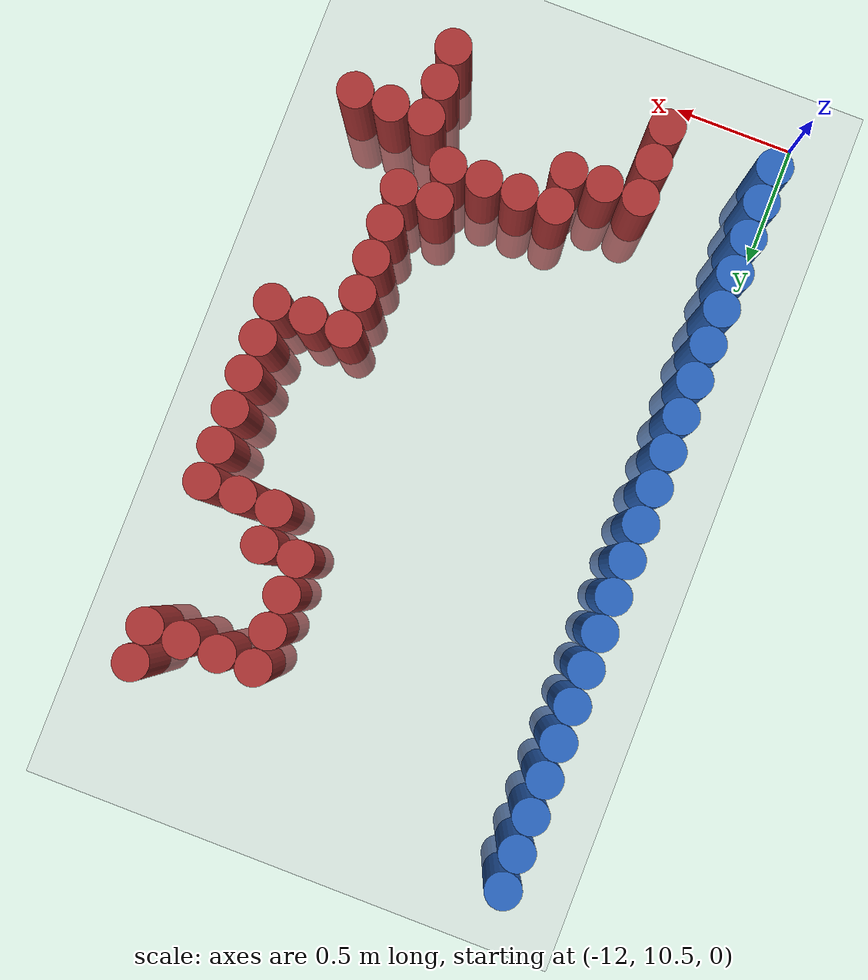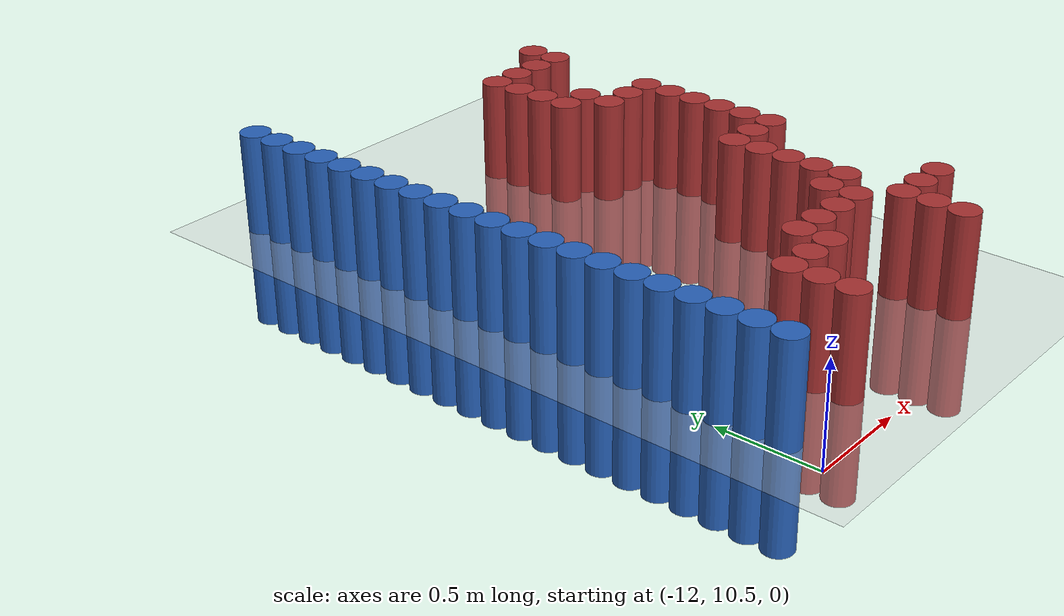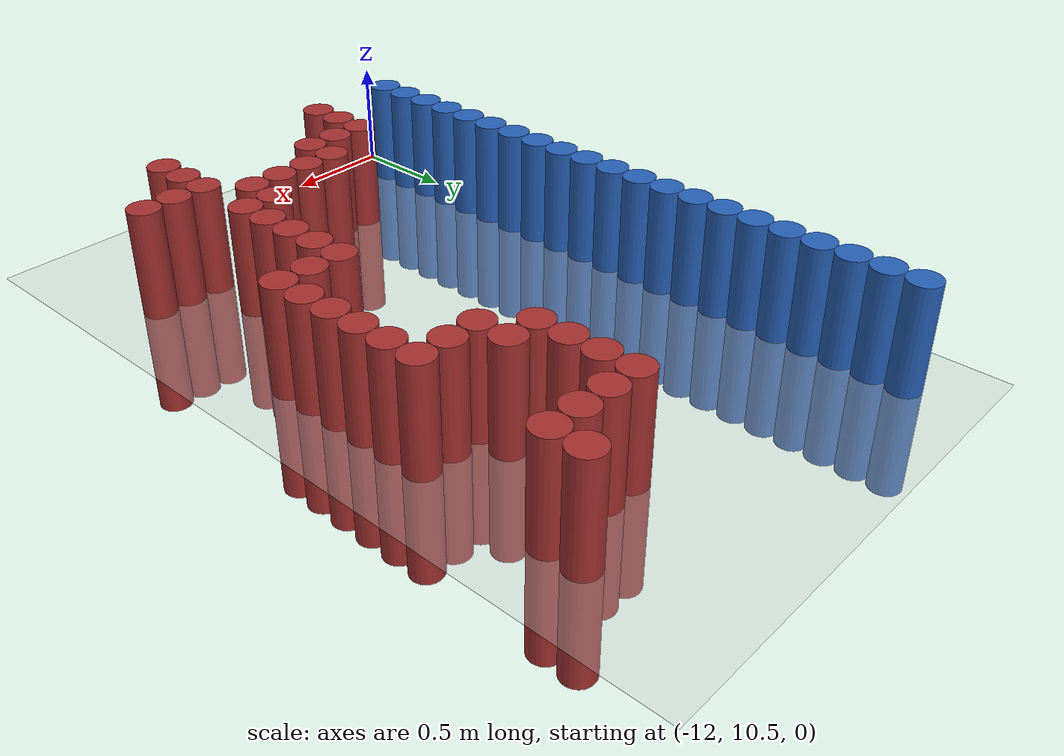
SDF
<sdf version="1.6">
 <world name="default">
  <model name="ground_plane">
   <static>1</static>
   <link name="link">
    <collision name="collision">
     <geometry><plane><normal>0 0 1</normal><size>100 100</size></plane></geometry>
     <surface><friction><ode><mu>100</mu><mu2>50</mu2></ode></friction></surface>
    </collision>
    <visual name="visual">
     <cast_shadows>0</cast_shadows>
     <geometry><plane><normal>0 0 1</normal><size>100 100</size></plane></geometry>
     <material>
      <script><uri>file://media/materials/scripts/gazebo.material</uri><name>Gazebo/Grey</name></script>
     </material>
    </visual>
   </link>
  </model>
  <model name="unit_cylinder_182">
   <static>1</static>
   <pose>-11.925 10.725 0 0 -0 0</pose>
   <link name="link">
    <inertial>
     <mass>1</mass>
     <inertia><ixx>0.145833</ixx><ixy>0</ixy><ixz>0</ixz><iyy>0.145833</iyy><iyz>0</iyz><izz>0.125</izz></inertia>
    </inertial>
    <collision name="collision">
     <geometry><cylinder><radius>0.075</radius><length>1</length></cylinder></geometry>
    </collision>
    <visual name="visual">
     <geometry><cylinder><radius>0.075</radius><length>1</length></cylinder></geometry>
     <material><ambient>0.152 0.379 0.72 1</ambient><diffuse>0.152 0.379 0.72 1</diffuse></material>
     <material>
      <script><name>Gazebo/Grey</name><uri>file://media/materials/scripts/gazebo.material</uri></script>
     </material>
    </visual>
   </link>
  </model>
  <model name="unit_cylinder_183">
   <static>1</static>
   <pose>-11.925 10.875 0 0 -0 0</pose>
   <link name="link">
    <inertial>
     <mass>1</mass>
     <inertia><ixx>0.145833</ixx><ixy>0</ixy><ixz>0</ixz><iyy>0.145833</iyy><iyz>0</iyz><izz>0.125</izz></inertia>
    </inertial>
    <collision name="collision">
     <geometry><cylinder><radius>0.075</radius><length>1</length></cylinder></geometry>
    </collision>
    <visual name="visual">
     <geometry><cylinder><radius>0.075</radius><length>1</length></cylinder></geometry>
     <material><ambient>0.152 0.379 0.72 1</ambient><diffuse>0.152 0.379 0.72 1</diffuse></material>
     <material>
      <script><name>Gazebo/Grey</name><uri>file://media/materials/scripts/gazebo.material</uri></script>
     </material>
    </visual>
   </link>
  </model>
  <model name="unit_cylinder_184">
   <static>1</static>
   <pose>-11.925 11.025 0 0 -0 0</pose>
   <link name="link">
    <inertial>
     <mass>1</mass>
     <inertia><ixx>0.145833</ixx><ixy>0</ixy><ixz>0</ixz><iyy>0.145833</iyy><iyz>0</iyz><izz>0.125</izz></inertia>
    </inertial>
    <collision name="collision">
     <geometry><cylinder><radius>0.075</radius><length>1</length></cylinder></geometry>
    </collision>
    <visual name="visual">
     <geometry><cylinder><radius>0.075</radius><length>1</length></cylinder></geometry>
     <material><ambient>0.152 0.379 0.72 1</ambient><diffuse>0.152 0.379 0.72 1</diffuse></material>
     <material>
      <script><name>Gazebo/Grey</name><uri>file://media/materials/scripts/gazebo.material</uri></script>
     </material>
    </visual>
   </link>
  </model>
  <model name="unit_cylinder_185">
   <static>1</static>
   <pose>-11.925 11.175 0 0 -0 0</pose>
   <link name="link">
    <inertial>
     <mass>1</mass>
     <inertia><ixx>0.145833</ixx><ixy>0</ixy><ixz>0</ixz><iyy>0.145833</iyy><iyz>0</iyz><izz>0.125</izz></inertia>
    </inertial>
    <collision name="collision">
     <geometry><cylinder><radius>0.075</radius><length>1</length></cylinder></geometry>
    </collision>
    <visual name="visual">
     <geometry><cylinder><radius>0.075</radius><length>1</length></cylinder></geometry>
     <material><ambient>0.152 0.379 0.72 1</ambient><diffuse>0.152 0.379 0.72 1</diffuse></material>
     <material>
      <script><name>Gazebo/Grey</name><uri>file://media/materials/scripts/gazebo.material</uri></script>
     </material>
    </visual>
   </link>
  </model>
  <model name="unit_cylinder_186">
   <static>1</static>
   <pose>-11.925 11.325 0 0 -0 0</pose>
   <link name="link">
    <inertial>
     <mass>1</mass>
     <inertia><ixx>0.145833</ixx><ixy>0</ixy><ixz>0</ixz><iyy>0.145833</iyy><iyz>0</iyz><izz>0.125</izz></inertia>
    </inertial>
    <collision name="collision">
     <geometry><cylinder><radius>0.075</radius><length>1</length></cylinder></geometry>
    </collision>
    <visual name="visual">
     <geometry><cylinder><radius>0.075</radius><length>1</length></cylinder></geometry>
     <material><ambient>0.152 0.379 0.72 1</ambient><diffuse>0.152 0.379 0.72 1</diffuse></material>
     <material>
      <script><name>Gazebo/Grey</name><uri>file://media/materials/scripts/gazebo.material</uri></script>
     </material>
    </visual>
   </link>
  </model>
  <model name="unit_cylinder_187">
   <static>1</static>
   <pose>-11.925 11.475 0 0 -0 0</pose>
   <link name="link">
    <inertial>
     <mass>1</mass>
     <inertia><ixx>0.145833</ixx><ixy>0</ixy><ixz>0</ixz><iyy>0.145833</iyy><iyz>0</iyz><izz>0.125</izz></inertia>
    </inertial>
    <collision name="collision">
     <geometry><cylinder><radius>0.075</radius><length>1</length></cylinder></geometry>
    </collision>
    <visual name="visual">
     <geometry><cylinder><radius>0.075</radius><length>1</length></cylinder></geometry>
     <material><ambient>0.152 0.379 0.72 1</ambient><diffuse>0.152 0.379 0.72 1</diffuse></material>
     <material>
      <script><name>Gazebo/Grey</name><uri>file://media/materials/scripts/gazebo.material</uri></script>
     </material>
    </visual>
   </link>
  </model>
  <model name="unit_cylinder_188">
   <static>1</static>
   <pose>-11.925 11.625 0 0 -0 0</pose>
   <link name="link">
    <inertial>
     <mass>1</mass>
     <inertia><ixx>0.145833</ixx><ixy>0</ixy><ixz>0</ixz><iyy>0.145833</iyy><iyz>0</iyz><izz>0.125</izz></inertia>
    </inertial>
    <collision name="collision">
     <geometry><cylinder><radius>0.075</radius><length>1</length></cylinder></geometry>
    </collision>
    <visual name="visual">
     <geometry><cylinder><radius>0.075</radius><length>1</length></cylinder></geometry>
     <material><ambient>0.152 0.379 0.72 1</ambient><diffuse>0.152 0.379 0.72 1</diffuse></material>
     <material>
      <script><name>Gazebo/Grey</name><uri>file://media/materials/scripts/gazebo.material</uri></script>
     </material>
    </visual>
   </link>
  </model>
  <model name="unit_cylinder_189">
   <static>1</static>
   <pose>-11.925 11.775 0 0 -0 0</pose>
   <link name="link">
    <inertial>
     <mass>1</mass>
     <inertia><ixx>0.145833</ixx><ixy>0</ixy><ixz>0</ixz><iyy>0.145833</iyy><iyz>0</iyz><izz>0.125</izz></inertia>
    </inertial>
    <collision name="collision">
     <geometry><cylinder><radius>0.075</radius><length>1</length></cylinder></geometry>
    </collision>
    <visual name="visual">
     <geometry><cylinder><radius>0.075</radius><length>1</length></cylinder></geometry>
     <material><ambient>0.152 0.379 0.72 1</ambient><diffuse>0.152 0.379 0.72 1</diffuse></material>
     <material>
      <script><name>Gazebo/Grey</name><uri>file://media/materials/scripts/gazebo.material</uri></script>
     </material>
    </visual>
   </link>
  </model>
  <model name="unit_cylinder_190">
   <static>1</static>
   <pose>-11.925 11.925 0 0 -0 0</pose>
   <link name="link">
    <inertial>
     <mass>1</mass>
     <inertia><ixx>0.145833</ixx><ixy>0</ixy><ixz>0</ixz><iyy>0.145833</iyy><iyz>0</iyz><izz>0.125</izz></inertia>
    </inertial>
    <collision name="collision">
     <geometry><cylinder><radius>0.075</radius><length>1</length></cylinder></geometry>
    </collision>
    <visual name="visual">
     <geometry><cylinder><radius>0.075</radius><length>1</length></cylinder></geometry>
     <material><ambient>0.152 0.379 0.72 1</ambient><diffuse>0.152 0.379 0.72 1</diffuse></material>
     <material>
      <script><name>Gazebo/Grey</name><uri>file://media/materials/scripts/gazebo.material</uri></script>
     </material>
    </visual>
   </link>
  </model>
  <model name="unit_cylinder_191">
   <static>1</static>
   <pose>-11.925 12.075 0 0 -0 0</pose>
   <link name="link">
    <inertial>
     <mass>1</mass>
     <inertia><ixx>0.145833</ixx><ixy>0</ixy><ixz>0</ixz><iyy>0.145833</iyy><iyz>0</iyz><izz>0.125</izz></inertia>
    </inertial>
    <collision name="collision">
     <geometry><cylinder><radius>0.075</radius><length>1</length></cylinder></geometry>
    </collision>
    <visual name="visual">
     <geometry><cylinder><radius>0.075</radius><length>1</length></cylinder></geometry>
     <material><ambient>0.152 0.379 0.72 1</ambient><diffuse>0.152 0.379 0.72 1</diffuse></material>
     <material>
      <script><name>Gazebo/Grey</name><uri>file://media/materials/scripts/gazebo.material</uri></script>
     </material>
    </visual>
   </link>
  </model>
  <model name="unit_cylinder_192">
   <static>1</static>
   <pose>-11.925 12.225 0 0 -0 0</pose>
   <link name="link">
    <inertial>
     <mass>1</mass>
     <inertia><ixx>0.145833</ixx><ixy>0</ixy><ixz>0</ixz><iyy>0.145833</iyy><iyz>0</iyz><izz>0.125</izz></inertia>
    </inertial>
    <collision name="collision">
     <geometry><cylinder><radius>0.075</radius><length>1</length></cylinder></geometry>
    </collision>
    <visual name="visual">
     <geometry><cylinder><radius>0.075</radius><length>1</length></cylinder></geometry>
     <material><ambient>0.152 0.379 0.72 1</ambient><diffuse>0.152 0.379 0.72 1</diffuse></material>
     <material>
      <script><name>Gazebo/Grey</name><uri>file://media/materials/scripts/gazebo.material</uri></script>
     </material>
    </visual>
   </link>
  </model>
  <model name="unit_cylinder_193">
   <static>1</static>
   <pose>-11.925 12.375 0 0 -0 0</pose>
   <link name="link">
    <inertial>
     <mass>1</mass>
     <inertia><ixx>0.145833</ixx><ixy>0</ixy><ixz>0</ixz><iyy>0.145833</iyy><iyz>0</iyz><izz>0.125</izz></inertia>
    </inertial>
    <collision name="collision">
     <geometry><cylinder><radius>0.075</radius><length>1</length></cylinder></geometry>
    </collision>
    <visual name="visual">
     <geometry><cylinder><radius>0.075</radius><length>1</length></cylinder></geometry>
     <material><ambient>0.152 0.379 0.72 1</ambient><diffuse>0.152 0.379 0.72 1</diffuse></material>
     <material>
      <script><name>Gazebo/Grey</name><uri>file://media/materials/scripts/gazebo.material</uri></script>
     </material>
    </visual>
   </link>
  </model>
  <model name="unit_cylinder_194">
   <static>1</static>
   <pose>-11.925 12.525 0 0 -0 0</pose>
   <link name="link">
    <inertial>
     <mass>1</mass>
     <inertia><ixx>0.145833</ixx><ixy>0</ixy><ixz>0</ixz><iyy>0.145833</iyy><iyz>0</iyz><izz>0.125</izz></inertia>
    </inertial>
    <collision name="collision">
     <geometry><cylinder><radius>0.075</radius><length>1</length></cylinder></geometry>
    </collision>
    <visual name="visual">
     <geometry><cylinder><radius>0.075</radius><length>1</length></cylinder></geometry>
     <material><ambient>0.152 0.379 0.72 1</ambient><diffuse>0.152 0.379 0.72 1</diffuse></material>
     <material>
      <script><name>Gazebo/Grey</name><uri>file://media/materials/scripts/gazebo.material</uri></script>
     </material>
    </visual>
   </link>
  </model>
  <model name="unit_cylinder_195">
   <static>1</static>
   <pose>-11.925 12.675 0 0 -0 0</pose>
   <link name="link">
    <inertial>
     <mass>1</mass>
     <inertia><ixx>0.145833</ixx><ixy>0</ixy><ixz>0</ixz><iyy>0.145833</iyy><iyz>0</iyz><izz>0.125</izz></inertia>
    </inertial>
    <collision name="collision">
     <geometry><cylinder><radius>0.075</radius><length>1</length></cylinder></geometry>
    </collision>
    <visual name="visual">
     <geometry><cylinder><radius>0.075</radius><length>1</length></cylinder></geometry>
     <material><ambient>0.152 0.379 0.72 1</ambient><diffuse>0.152 0.379 0.72 1</diffuse></material>
     <material>
      <script><name>Gazebo/Grey</name><uri>file://media/materials/scripts/gazebo.material</uri></script>
     </material>
    </visual>
   </link>
  </model>
  <model name="unit_cylinder_196">
   <static>1</static>
   <pose>-11.925 12.825 0 0 -0 0</pose>
   <link name="link">
    <inertial>
     <mass>1</mass>
     <inertia><ixx>0.145833</ixx><ixy>0</ixy><ixz>0</ixz><iyy>0.145833</iyy><iyz>0</iyz><izz>0.125</izz></inertia>
    </inertial>
    <collision name="collision">
     <geometry><cylinder><radius>0.075</radius><length>1</length></cylinder></geometry>
    </collision>
    <visual name="visual">
     <geometry><cylinder><radius>0.075</radius><length>1</length></cylinder></geometry>
     <material><ambient>0.152 0.379 0.72 1</ambient><diffuse>0.152 0.379 0.72 1</diffuse></material>
     <material>
      <script><name>Gazebo/Grey</name><uri>file://media/materials/scripts/gazebo.material</uri></script>
     </material>
    </visual>
   </link>
  </model>
  <model name="unit_cylinder_197">
   <static>1</static>
   <pose>-11.925 12.975 0 0 -0 0</pose>
   <link name="link">
    <inertial>
     <mass>1</mass>
     <inertia><ixx>0.145833</ixx><ixy>0</ixy><ixz>0</ixz><iyy>0.145833</iyy><iyz>0</iyz><izz>0.125</izz></inertia>
    </inertial>
    <collision name="collision">
     <geometry><cylinder><radius>0.075</radius><length>1</length></cylinder></geometry>
    </collision>
    <visual name="visual">
     <geometry><cylinder><radius>0.075</radius><length>1</length></cylinder></geometry>
     <material><ambient>0.152 0.379 0.72 1</ambient><diffuse>0.152 0.379 0.72 1</diffuse></material>
     <material>
      <script><name>Gazebo/Grey</name><uri>file://media/materials/scripts/gazebo.material</uri></script>
     </material>
    </visual>
   </link>
  </model>
  <model name="unit_cylinder_198">
   <static>1</static>
   <pose>-11.925 13.125 0 0 -0 0</pose>
   <link name="link">
    <inertial>
     <mass>1</mass>
     <inertia><ixx>0.145833</ixx><ixy>0</ixy><ixz>0</ixz><iyy>0.145833</iyy><iyz>0</iyz><izz>0.125</izz></inertia>
    </inertial>
    <collision name="collision">
     <geometry><cylinder><radius>0.075</radius><length>1</length></cylinder></geometry>
    </collision>
    <visual name="visual">
     <geometry><cylinder><radius>0.075</radius><length>1</length></cylinder></geometry>
     <material><ambient>0.152 0.379 0.72 1</ambient><diffuse>0.152 0.379 0.72 1</diffuse></material>
     <material>
      <script><name>Gazebo/Grey</name><uri>file://media/materials/scripts/gazebo.material</uri></script>
     </material>
    </visual>
   </link>
  </model>
  <model name="unit_cylinder_199">
   <static>1</static>
   <pose>-11.925 13.275 0 0 -0 0</pose>
   <link name="link">
    <inertial>
     <mass>1</mass>
     <inertia><ixx>0.145833</ixx><ixy>0</ixy><ixz>0</ixz><iyy>0.145833</iyy><iyz>0</iyz><izz>0.125</izz></inertia>
    </inertial>
    <collision name="collision">
     <geometry><cylinder><radius>0.075</radius><length>1</length></cylinder></geometry>
    </collision>
    <visual name="visual">
     <geometry><cylinder><radius>0.075</radius><length>1</length></cylinder></geometry>
     <material><ambient>0.152 0.379 0.72 1</ambient><diffuse>0.152 0.379 0.72 1</diffuse></material>
     <material>
      <script><name>Gazebo/Grey</name><uri>file://media/materials/scripts/gazebo.material</uri></script>
     </material>
    </visual>
   </link>
  </model>
  <model name="unit_cylinder_200">
   <static>1</static>
   <pose>-11.925 13.425 0 0 -0 0</pose>
   <link name="link">
    <inertial>
     <mass>1</mass>
     <inertia><ixx>0.145833</ixx><ixy>0</ixy><ixz>0</ixz><iyy>0.145833</iyy><iyz>0</iyz><izz>0.125</izz></inertia>
    </inertial>
    <collision name="collision">
     <geometry><cylinder><radius>0.075</radius><length>1</length></cylinder></geometry>
    </collision>
    <visual name="visual">
     <geometry><cylinder><radius>0.075</radius><length>1</length></cylinder></geometry>
     <material><ambient>0.152 0.379 0.72 1</ambient><diffuse>0.152 0.379 0.72 1</diffuse></material>
     <material>
      <script><name>Gazebo/Grey</name><uri>file://media/materials/scripts/gazebo.material</uri></script>
     </material>
    </visual>
   </link>
  </model>
  <model name="unit_cylinder_201">
   <static>1</static>
   <pose>-11.925 13.575 0 0 -0 0</pose>
   <link name="link">
    <inertial>
     <mass>1</mass>
     <inertia><ixx>0.145833</ixx><ixy>0</ixy><ixz>0</ixz><iyy>0.145833</iyy><iyz>0</iyz><izz>0.125</izz></inertia>
    </inertial>
    <collision name="collision">
     <geometry><cylinder><radius>0.075</radius><length>1</length></cylinder></geometry>
    </collision>
    <visual name="visual">
     <geometry><cylinder><radius>0.075</radius><length>1</length></cylinder></geometry>
     <material><ambient>0.152 0.379 0.72 1</ambient><diffuse>0.152 0.379 0.72 1</diffuse></material>
     <material>
      <script><name>Gazebo/Grey</name><uri>file://media/materials/scripts/gazebo.material</uri></script>
     </material>
    </visual>
   </link>
  </model>
  <model name="unit_cylinder_202">
   <static>1</static>
   <pose>-11.925 13.725 0 0 -0 0</pose>
   <link name="link">
    <inertial>
     <mass>1</mass>
     <inertia><ixx>0.145833</ixx><ixy>0</ixy><ixz>0</ixz><iyy>0.145833</iyy><iyz>0</iyz><izz>0.125</izz></inertia>
    </inertial>
    <collision name="collision">
     <geometry><cylinder><radius>0.075</radius><length>1</length></cylinder></geometry>
    </collision>
    <visual name="visual">
     <geometry><cylinder><radius>0.075</radius><length>1</length></cylinder></geometry>
     <material><ambient>0.152 0.379 0.72 1</ambient><diffuse>0.152 0.379 0.72 1</diffuse></material>
     <material>
      <script><name>Gazebo/Grey</name><uri>file://media/materials/scripts/gazebo.material</uri></script>
     </material>
    </visual>
   </link>
  </model>
  <model name="unit_cylinder_266">
   <static>1</static>
   <pose>-11.475 10.725 0 0 -0 0</pose>
   <link name="link">
    <inertial>
     <mass>1</mass>
     <inertia><ixx>0.145833</ixx><ixy>0</ixy><ixz>0</ixz><iyy>0.145833</iyy><iyz>0</iyz><izz>0.125</izz></inertia>
    </inertial>
    <collision name="collision">
     <geometry><cylinder><radius>0.075</radius><length>1</length></cylinder></geometry>
    </collision>
    <visual name="visual">
     <geometry><cylinder><radius>0.075</radius><length>1</length></cylinder></geometry>
     <material><ambient>0.648 0.192 0.192 1</ambient><diffuse>0.648 0.192 0.192 1</diffuse></material>
     <material>
      <script><name>Gazebo/Grey</name><uri>file://media/materials/scripts/gazebo.material</uri></script>
     </material>
    </visual>
   </link>
  </model>
  <model name="unit_cylinder_267">
   <static>1</static>
   <pose>-11.475 10.875 0 0 -0 0</pose>
   <link name="link">
    <inertial>
     <mass>1</mass>
     <inertia><ixx>0.145833</ixx><ixy>0</ixy><ixz>0</ixz><iyy>0.145833</iyy><iyz>0</iyz><izz>0.125</izz></inertia>
    </inertial>
    <collision name="collision">
     <geometry><cylinder><radius>0.075</radius><length>1</length></cylinder></geometry>
    </collision>
    <visual name="visual">
     <geometry><cylinder><radius>0.075</radius><length>1</length></cylinder></geometry>
     <material><ambient>0.648 0.192 0.192 1</ambient><diffuse>0.648 0.192 0.192 1</diffuse></material>
     <material>
      <script><name>Gazebo/Grey</name><uri>file://media/materials/scripts/gazebo.material</uri></script>
     </material>
    </visual>
   </link>
  </model>
  <model name="unit_cylinder_268">
   <static>1</static>
   <pose>-11.475 11.025 0 0 -0 0</pose>
   <link name="link">
    <inertial>
     <mass>1</mass>
     <inertia><ixx>0.145833</ixx><ixy>0</ixy><ixz>0</ixz><iyy>0.145833</iyy><iyz>0</iyz><izz>0.125</izz></inertia>
    </inertial>
    <collision name="collision">
     <geometry><cylinder><radius>0.075</radius><length>1</length></cylinder></geometry>
    </collision>
    <visual name="visual">
     <geometry><cylinder><radius>0.075</radius><length>1</length></cylinder></geometry>
     <material><ambient>0.648 0.192 0.192 1</ambient><diffuse>0.648 0.192 0.192 1</diffuse></material>
     <material>
      <script><name>Gazebo/Grey</name><uri>file://media/materials/scripts/gazebo.material</uri></script>
     </material>
    </visual>
   </link>
  </model>
  <model name="unit_cylinder_284">
   <static>1</static>
   <pose>-11.325 11.025 0 0 -0 0</pose>
   <link name="link">
    <inertial>
     <mass>1</mass>
     <inertia><ixx>0.145833</ixx><ixy>0</ixy><ixz>0</ixz><iyy>0.145833</iyy><iyz>0</iyz><izz>0.125</izz></inertia>
    </inertial>
    <collision name="collision">
     <geometry><cylinder><radius>0.075</radius><length>1</length></cylinder></geometry>
    </collision>
    <visual name="visual">
     <geometry><cylinder><radius>0.075</radius><length>1</length></cylinder></geometry>
     <material><ambient>0.648 0.192 0.192 1</ambient><diffuse>0.648 0.192 0.192 1</diffuse></material>
     <material>
      <script><name>Gazebo/Grey</name><uri>file://media/materials/scripts/gazebo.material</uri></script>
     </material>
    </visual>
   </link>
  </model>
  <model name="unit_cylinder_300">
   <static>1</static>
   <pose>-11.175 11.025 0 0 -0 0</pose>
   <link name="link">
    <inertial>
     <mass>1</mass>
     <inertia><ixx>0.145833</ixx><ixy>0</ixy><ixz>0</ixz><iyy>0.145833</iyy><iyz>0</iyz><izz>0.125</izz></inertia>
    </inertial>
    <collision name="collision">
     <geometry><cylinder><radius>0.075</radius><length>1</length></cylinder></geometry>
    </collision>
    <visual name="visual">
     <geometry><cylinder><radius>0.075</radius><length>1</length></cylinder></geometry>
     <material><ambient>0.648 0.192 0.192 1</ambient><diffuse>0.648 0.192 0.192 1</diffuse></material>
     <material>
      <script><name>Gazebo/Grey</name><uri>file://media/materials/scripts/gazebo.material</uri></script>
     </material>
    </visual>
   </link>
  </model>
  <model name="unit_cylinder_301">
   <static>1</static>
   <pose>-11.175 11.175 0 0 -0 0</pose>
   <link name="link">
    <inertial>
     <mass>1</mass>
     <inertia><ixx>0.145833</ixx><ixy>0</ixy><ixz>0</ixz><iyy>0.145833</iyy><iyz>0</iyz><izz>0.125</izz></inertia>
    </inertial>
    <collision name="collision">
     <geometry><cylinder><radius>0.075</radius><length>1</length></cylinder></geometry>
    </collision>
    <visual name="visual">
     <geometry><cylinder><radius>0.075</radius><length>1</length></cylinder></geometry>
     <material><ambient>0.648 0.192 0.192 1</ambient><diffuse>0.648 0.192 0.192 1</diffuse></material>
     <material>
      <script><name>Gazebo/Grey</name><uri>file://media/materials/scripts/gazebo.material</uri></script>
     </material>
    </visual>
   </link>
  </model>
  <model name="unit_cylinder_307">
   <static>1</static>
   <pose>-11.025 11.175 0 0 -0 0</pose>
   <link name="link">
    <inertial>
     <mass>1</mass>
     <inertia><ixx>0.145833</ixx><ixy>0</ixy><ixz>0</ixz><iyy>0.145833</iyy><iyz>0</iyz><izz>0.125</izz></inertia>
    </inertial>
    <collision name="collision">
     <geometry><cylinder><radius>0.075</radius><length>1</length></cylinder></geometry>
    </collision>
    <visual name="visual">
     <geometry><cylinder><radius>0.075</radius><length>1</length></cylinder></geometry>
     <material><ambient>0.648 0.192 0.192 1</ambient><diffuse>0.648 0.192 0.192 1</diffuse></material>
     <material>
      <script><name>Gazebo/Grey</name><uri>file://media/materials/scripts/gazebo.material</uri></script>
     </material>
    </visual>
   </link>
  </model>
  <model name="unit_cylinder_317">
   <static>1</static>
   <pose>-10.875 11.175 0 0 -0 0</pose>
   <link name="link">
    <inertial>
     <mass>1</mass>
     <inertia><ixx>0.145833</ixx><ixy>0</ixy><ixz>0</ixz><iyy>0.145833</iyy><iyz>0</iyz><izz>0.125</izz></inertia>
    </inertial>
    <collision name="collision">
     <geometry><cylinder><radius>0.075</radius><length>1</length></cylinder></geometry>
    </collision>
    <visual name="visual">
     <geometry><cylinder><radius>0.075</radius><length>1</length></cylinder></geometry>
     <material><ambient>0.648 0.192 0.192 1</ambient><diffuse>0.648 0.192 0.192 1</diffuse></material>
     <material>
      <script><name>Gazebo/Grey</name><uri>file://media/materials/scripts/gazebo.material</uri></script>
     </material>
    </visual>
   </link>
  </model>
  <model name="unit_cylinder_328">
   <static>1</static>
   <pose>-10.725 11.175 0 0 -0 0</pose>
   <link name="link">
    <inertial>
     <mass>1</mass>
     <inertia><ixx>0.145833</ixx><ixy>0</ixy><ixz>0</ixz><iyy>0.145833</iyy><iyz>0</iyz><izz>0.125</izz></inertia>
    </inertial>
    <collision name="collision">
     <geometry><cylinder><radius>0.075</radius><length>1</length></cylinder></geometry>
    </collision>
    <visual name="visual">
     <geometry><cylinder><radius>0.075</radius><length>1</length></cylinder></geometry>
     <material><ambient>0.648 0.192 0.192 1</ambient><diffuse>0.648 0.192 0.192 1</diffuse></material>
     <material>
      <script><name>Gazebo/Grey</name><uri>file://media/materials/scripts/gazebo.material</uri></script>
     </material>
    </visual>
   </link>
  </model>
  <model name="unit_cylinder_329">
   <static>1</static>
   <pose>-10.725 11.325 0 0 -0 0</pose>
   <link name="link">
    <inertial>
     <mass>1</mass>
     <inertia><ixx>0.145833</ixx><ixy>0</ixy><ixz>0</ixz><iyy>0.145833</iyy><iyz>0</iyz><izz>0.125</izz></inertia>
    </inertial>
    <collision name="collision">
     <geometry><cylinder><radius>0.075</radius><length>1</length></cylinder></geometry>
    </collision>
    <visual name="visual">
     <geometry><cylinder><radius>0.075</radius><length>1</length></cylinder></geometry>
     <material><ambient>0.648 0.192 0.192 1</ambient><diffuse>0.648 0.192 0.192 1</diffuse></material>
     <material>
      <script><name>Gazebo/Grey</name><uri>file://media/materials/scripts/gazebo.material</uri></script>
     </material>
    </visual>
   </link>
  </model>
  <model name="unit_cylinder_330">
   <static>1</static>
   <pose>-10.725 12.825 0 0 -0 0</pose>
   <link name="link">
    <inertial>
     <mass>1</mass>
     <inertia><ixx>0.145833</ixx><ixy>0</ixy><ixz>0</ixz><iyy>0.145833</iyy><iyz>0</iyz><izz>0.125</izz></inertia>
    </inertial>
    <collision name="collision">
     <geometry><cylinder><radius>0.075</radius><length>1</length></cylinder></geometry>
    </collision>
    <visual name="visual">
     <geometry><cylinder><radius>0.075</radius><length>1</length></cylinder></geometry>
     <material><ambient>0.648 0.192 0.192 1</ambient><diffuse>0.648 0.192 0.192 1</diffuse></material>
     <material>
      <script><name>Gazebo/Grey</name><uri>file://media/materials/scripts/gazebo.material</uri></script>
     </material>
    </visual>
   </link>
  </model>
  <model name="unit_cylinder_331">
   <static>1</static>
   <pose>-10.725 12.975 0 0 -0 0</pose>
   <link name="link">
    <inertial>
     <mass>1</mass>
     <inertia><ixx>0.145833</ixx><ixy>0</ixy><ixz>0</ixz><iyy>0.145833</iyy><iyz>0</iyz><izz>0.125</izz></inertia>
    </inertial>
    <collision name="collision">
     <geometry><cylinder><radius>0.075</radius><length>1</length></cylinder></geometry>
    </collision>
    <visual name="visual">
     <geometry><cylinder><radius>0.075</radius><length>1</length></cylinder></geometry>
     <material><ambient>0.648 0.192 0.192 1</ambient><diffuse>0.648 0.192 0.192 1</diffuse></material>
     <material>
      <script><name>Gazebo/Grey</name><uri>file://media/materials/scripts/gazebo.material</uri></script>
     </material>
    </visual>
   </link>
  </model>
  <model name="unit_cylinder_332">
   <static>1</static>
   <pose>-10.725 13.125 0 0 -0 0</pose>
   <link name="link">
    <inertial>
     <mass>1</mass>
     <inertia><ixx>0.145833</ixx><ixy>0</ixy><ixz>0</ixz><iyy>0.145833</iyy><iyz>0</iyz><izz>0.125</izz></inertia>
    </inertial>
    <collision name="collision">
     <geometry><cylinder><radius>0.075</radius><length>1</length></cylinder></geometry>
    </collision>
    <visual name="visual">
     <geometry><cylinder><radius>0.075</radius><length>1</length></cylinder></geometry>
     <material><ambient>0.648 0.192 0.192 1</ambient><diffuse>0.648 0.192 0.192 1</diffuse></material>
     <material>
      <script><name>Gazebo/Grey</name><uri>file://media/materials/scripts/gazebo.material</uri></script>
     </material>
    </visual>
   </link>
  </model>
  <model name="unit_cylinder_333">
   <static>1</static>
   <pose>-10.725 13.275 0 0 -0 0</pose>
   <link name="link">
    <inertial>
     <mass>1</mass>
     <inertia><ixx>0.145833</ixx><ixy>0</ixy><ixz>0</ixz><iyy>0.145833</iyy><iyz>0</iyz><izz>0.125</izz></inertia>
    </inertial>
    <collision name="collision">
     <geometry><cylinder><radius>0.075</radius><length>1</length></cylinder></geometry>
    </collision>
    <visual name="visual">
     <geometry><cylinder><radius>0.075</radius><length>1</length></cylinder></geometry>
     <material><ambient>0.648 0.192 0.192 1</ambient><diffuse>0.648 0.192 0.192 1</diffuse></material>
     <material>
      <script><name>Gazebo/Grey</name><uri>file://media/materials/scripts/gazebo.material</uri></script>
     </material>
    </visual>
   </link>
  </model>
  <model name="unit_cylinder_350">
   <static>1</static>
   <pose>-10.575 10.725 0 0 -0 0</pose>
   <link name="link">
    <inertial>
     <mass>1</mass>
     <inertia><ixx>0.145833</ixx><ixy>0</ixy><ixz>0</ixz><iyy>0.145833</iyy><iyz>0</iyz><izz>0.125</izz></inertia>
    </inertial>
    <collision name="collision">
     <geometry><cylinder><radius>0.075</radius><length>1</length></cylinder></geometry>
    </collision>
    <visual name="visual">
     <geometry><cylinder><radius>0.075</radius><length>1</length></cylinder></geometry>
     <material><ambient>0.648 0.192 0.192 1</ambient><diffuse>0.648 0.192 0.192 1</diffuse></material>
     <material>
      <script><name>Gazebo/Grey</name><uri>file://media/materials/scripts/gazebo.material</uri></script>
     </material>
    </visual>
   </link>
  </model>
  <model name="unit_cylinder_351">
   <static>1</static>
   <pose>-10.575 10.875 0 0 -0 0</pose>
   <link name="link">
    <inertial>
     <mass>1</mass>
     <inertia><ixx>0.145833</ixx><ixy>0</ixy><ixz>0</ixz><iyy>0.145833</iyy><iyz>0</iyz><izz>0.125</izz></inertia>
    </inertial>
    <collision name="collision">
     <geometry><cylinder><radius>0.075</radius><length>1</length></cylinder></geometry>
    </collision>
    <visual name="visual">
     <geometry><cylinder><radius>0.075</radius><length>1</length></cylinder></geometry>
     <material><ambient>0.648 0.192 0.192 1</ambient><diffuse>0.648 0.192 0.192 1</diffuse></material>
     <material>
      <script><name>Gazebo/Grey</name><uri>file://media/materials/scripts/gazebo.material</uri></script>
     </material>
    </visual>
   </link>
  </model>
  <model name="unit_cylinder_352">
   <static>1</static>
   <pose>-10.575 11.025 0 0 -0 0</pose>
   <link name="link">
    <inertial>
     <mass>1</mass>
     <inertia><ixx>0.145833</ixx><ixy>0</ixy><ixz>0</ixz><iyy>0.145833</iyy><iyz>0</iyz><izz>0.125</izz></inertia>
    </inertial>
    <collision name="collision">
     <geometry><cylinder><radius>0.075</radius><length>1</length></cylinder></geometry>
    </collision>
    <visual name="visual">
     <geometry><cylinder><radius>0.075</radius><length>1</length></cylinder></geometry>
     <material><ambient>0.648 0.192 0.192 1</ambient><diffuse>0.648 0.192 0.192 1</diffuse></material>
     <material>
      <script><name>Gazebo/Grey</name><uri>file://media/materials/scripts/gazebo.material</uri></script>
     </material>
    </visual>
   </link>
  </model>
  <model name="unit_cylinder_353">
   <static>1</static>
   <pose>-10.575 11.325 0 0 -0 0</pose>
   <link name="link">
    <inertial>
     <mass>1</mass>
     <inertia><ixx>0.145833</ixx><ixy>0</ixy><ixz>0</ixz><iyy>0.145833</iyy><iyz>0</iyz><izz>0.125</izz></inertia>
    </inertial>
    <collision name="collision">
     <geometry><cylinder><radius>0.075</radius><length>1</length></cylinder></geometry>
    </collision>
    <visual name="visual">
     <geometry><cylinder><radius>0.075</radius><length>1</length></cylinder></geometry>
     <material><ambient>0.648 0.192 0.192 1</ambient><diffuse>0.648 0.192 0.192 1</diffuse></material>
     <material>
      <script><name>Gazebo/Grey</name><uri>file://media/materials/scripts/gazebo.material</uri></script>
     </material>
    </visual>
   </link>
  </model>
  <model name="unit_cylinder_354">
   <static>1</static>
   <pose>-10.575 11.475 0 0 -0 0</pose>
   <link name="link">
    <inertial>
     <mass>1</mass>
     <inertia><ixx>0.145833</ixx><ixy>0</ixy><ixz>0</ixz><iyy>0.145833</iyy><iyz>0</iyz><izz>0.125</izz></inertia>
    </inertial>
    <collision name="collision">
     <geometry><cylinder><radius>0.075</radius><length>1</length></cylinder></geometry>
    </collision>
    <visual name="visual">
     <geometry><cylinder><radius>0.075</radius><length>1</length></cylinder></geometry>
     <material><ambient>0.648 0.192 0.192 1</ambient><diffuse>0.648 0.192 0.192 1</diffuse></material>
     <material>
      <script><name>Gazebo/Grey</name><uri>file://media/materials/scripts/gazebo.material</uri></script>
     </material>
    </visual>
   </link>
  </model>
  <model name="unit_cylinder_355">
   <static>1</static>
   <pose>-10.575 11.625 0 0 -0 0</pose>
   <link name="link">
    <inertial>
     <mass>1</mass>
     <inertia><ixx>0.145833</ixx><ixy>0</ixy><ixz>0</ixz><iyy>0.145833</iyy><iyz>0</iyz><izz>0.125</izz></inertia>
    </inertial>
    <collision name="collision">
     <geometry><cylinder><radius>0.075</radius><length>1</length></cylinder></geometry>
    </collision>
    <visual name="visual">
     <geometry><cylinder><radius>0.075</radius><length>1</length></cylinder></geometry>
     <material><ambient>0.648 0.192 0.192 1</ambient><diffuse>0.648 0.192 0.192 1</diffuse></material>
     <material>
      <script><name>Gazebo/Grey</name><uri>file://media/materials/scripts/gazebo.material</uri></script>
     </material>
    </visual>
   </link>
  </model>
  <model name="unit_cylinder_356">
   <static>1</static>
   <pose>-10.575 11.775 0 0 -0 0</pose>
   <link name="link">
    <inertial>
     <mass>1</mass>
     <inertia><ixx>0.145833</ixx><ixy>0</ixy><ixz>0</ixz><iyy>0.145833</iyy><iyz>0</iyz><izz>0.125</izz></inertia>
    </inertial>
    <collision name="collision">
     <geometry><cylinder><radius>0.075</radius><length>1</length></cylinder></geometry>
    </collision>
    <visual name="visual">
     <geometry><cylinder><radius>0.075</radius><length>1</length></cylinder></geometry>
     <material><ambient>0.648 0.192 0.192 1</ambient><diffuse>0.648 0.192 0.192 1</diffuse></material>
     <material>
      <script><name>Gazebo/Grey</name><uri>file://media/materials/scripts/gazebo.material</uri></script>
     </material>
    </visual>
   </link>
  </model>
  <model name="unit_cylinder_357">
   <static>1</static>
   <pose>-10.575 11.925 0 0 -0 0</pose>
   <link name="link">
    <inertial>
     <mass>1</mass>
     <inertia><ixx>0.145833</ixx><ixy>0</ixy><ixz>0</ixz><iyy>0.145833</iyy><iyz>0</iyz><izz>0.125</izz></inertia>
    </inertial>
    <collision name="collision">
     <geometry><cylinder><radius>0.075</radius><length>1</length></cylinder></geometry>
    </collision>
    <visual name="visual">
     <geometry><cylinder><radius>0.075</radius><length>1</length></cylinder></geometry>
     <material><ambient>0.648 0.192 0.192 1</ambient><diffuse>0.648 0.192 0.192 1</diffuse></material>
     <material>
      <script><name>Gazebo/Grey</name><uri>file://media/materials/scripts/gazebo.material</uri></script>
     </material>
    </visual>
   </link>
  </model>
  <model name="unit_cylinder_358">
   <static>1</static>
   <pose>-10.575 12.675 0 0 -0 0</pose>
   <link name="link">
    <inertial>
     <mass>1</mass>
     <inertia><ixx>0.145833</ixx><ixy>0</ixy><ixz>0</ixz><iyy>0.145833</iyy><iyz>0</iyz><izz>0.125</izz></inertia>
    </inertial>
    <collision name="collision">
     <geometry><cylinder><radius>0.075</radius><length>1</length></cylinder></geometry>
    </collision>
    <visual name="visual">
     <geometry><cylinder><radius>0.075</radius><length>1</length></cylinder></geometry>
     <material><ambient>0.648 0.192 0.192 1</ambient><diffuse>0.648 0.192 0.192 1</diffuse></material>
     <material>
      <script><name>Gazebo/Grey</name><uri>file://media/materials/scripts/gazebo.material</uri></script>
     </material>
    </visual>
   </link>
  </model>
  <model name="unit_cylinder_359">
   <static>1</static>
   <pose>-10.575 12.825 0 0 -0 0</pose>
   <link name="link">
    <inertial>
     <mass>1</mass>
     <inertia><ixx>0.145833</ixx><ixy>0</ixy><ixz>0</ixz><iyy>0.145833</iyy><iyz>0</iyz><izz>0.125</izz></inertia>
    </inertial>
    <collision name="collision">
     <geometry><cylinder><radius>0.075</radius><length>1</length></cylinder></geometry>
    </collision>
    <visual name="visual">
     <geometry><cylinder><radius>0.075</radius><length>1</length></cylinder></geometry>
     <material><ambient>0.648 0.192 0.192 1</ambient><diffuse>0.648 0.192 0.192 1</diffuse></material>
     <material>
      <script><name>Gazebo/Grey</name><uri>file://media/materials/scripts/gazebo.material</uri></script>
     </material>
    </visual>
   </link>
  </model>
  <model name="unit_cylinder_360">
   <static>1</static>
   <pose>-10.575 13.275 0 0 -0 0</pose>
   <link name="link">
    <inertial>
     <mass>1</mass>
     <inertia><ixx>0.145833</ixx><ixy>0</ixy><ixz>0</ixz><iyy>0.145833</iyy><iyz>0</iyz><izz>0.125</izz></inertia>
    </inertial>
    <collision name="collision">
     <geometry><cylinder><radius>0.075</radius><length>1</length></cylinder></geometry>
    </collision>
    <visual name="visual">
     <geometry><cylinder><radius>0.075</radius><length>1</length></cylinder></geometry>
     <material><ambient>0.648 0.192 0.192 1</ambient><diffuse>0.648 0.192 0.192 1</diffuse></material>
     <material>
      <script><name>Gazebo/Grey</name><uri>file://media/materials/scripts/gazebo.material</uri></script>
     </material>
    </visual>
   </link>
  </model>
  <model name="unit_cylinder_372">
   <static>1</static>
   <pose>-10.425 11.025 0 0 -0 0</pose>
   <link name="link">
    <inertial>
     <mass>1</mass>
     <inertia><ixx>0.145833</ixx><ixy>0</ixy><ixz>0</ixz><iyy>0.145833</iyy><iyz>0</iyz><izz>0.125</izz></inertia>
    </inertial>
    <collision name="collision">
     <geometry><cylinder><radius>0.075</radius><length>1</length></cylinder></geometry>
    </collision>
    <visual name="visual">
     <geometry><cylinder><radius>0.075</radius><length>1</length></cylinder></geometry>
     <material><ambient>0.648 0.192 0.192 1</ambient><diffuse>0.648 0.192 0.192 1</diffuse></material>
     <material>
      <script><name>Gazebo/Grey</name><uri>file://media/materials/scripts/gazebo.material</uri></script>
     </material>
    </visual>
   </link>
  </model>
  <model name="unit_cylinder_373">
   <static>1</static>
   <pose>-10.425 11.925 0 0 -0 0</pose>
   <link name="link">
    <inertial>
     <mass>1</mass>
     <inertia><ixx>0.145833</ixx><ixy>0</ixy><ixz>0</ixz><iyy>0.145833</iyy><iyz>0</iyz><izz>0.125</izz></inertia>
    </inertial>
    <collision name="collision">
     <geometry><cylinder><radius>0.075</radius><length>1</length></cylinder></geometry>
    </collision>
    <visual name="visual">
     <geometry><cylinder><radius>0.075</radius><length>1</length></cylinder></geometry>
     <material><ambient>0.648 0.192 0.192 1</ambient><diffuse>0.648 0.192 0.192 1</diffuse></material>
     <material>
      <script><name>Gazebo/Grey</name><uri>file://media/materials/scripts/gazebo.material</uri></script>
     </material>
    </visual>
   </link>
  </model>
  <model name="unit_cylinder_374">
   <static>1</static>
   <pose>-10.425 12.675 0 0 -0 0</pose>
   <link name="link">
    <inertial>
     <mass>1</mass>
     <inertia><ixx>0.145833</ixx><ixy>0</ixy><ixz>0</ixz><iyy>0.145833</iyy><iyz>0</iyz><izz>0.125</izz></inertia>
    </inertial>
    <collision name="collision">
     <geometry><cylinder><radius>0.075</radius><length>1</length></cylinder></geometry>
    </collision>
    <visual name="visual">
     <geometry><cylinder><radius>0.075</radius><length>1</length></cylinder></geometry>
     <material><ambient>0.648 0.192 0.192 1</ambient><diffuse>0.648 0.192 0.192 1</diffuse></material>
     <material>
      <script><name>Gazebo/Grey</name><uri>file://media/materials/scripts/gazebo.material</uri></script>
     </material>
    </visual>
   </link>
  </model>
  <model name="unit_cylinder_375">
   <static>1</static>
   <pose>-10.425 13.275 0 0 -0 0</pose>
   <link name="link">
    <inertial>
     <mass>1</mass>
     <inertia><ixx>0.145833</ixx><ixy>0</ixy><ixz>0</ixz><iyy>0.145833</iyy><iyz>0</iyz><izz>0.125</izz></inertia>
    </inertial>
    <collision name="collision">
     <geometry><cylinder><radius>0.075</radius><length>1</length></cylinder></geometry>
    </collision>
    <visual name="visual">
     <geometry><cylinder><radius>0.075</radius><length>1</length></cylinder></geometry>
     <material><ambient>0.648 0.192 0.192 1</ambient><diffuse>0.648 0.192 0.192 1</diffuse></material>
     <material>
      <script><name>Gazebo/Grey</name><uri>file://media/materials/scripts/gazebo.material</uri></script>
     </material>
    </visual>
   </link>
  </model>
  <model name="unit_cylinder_386">
   <static>1</static>
   <pose>-10.275 11.025 0 0 -0 0</pose>
   <link name="link">
    <inertial>
     <mass>1</mass>
     <inertia><ixx>0.145833</ixx><ixy>0</ixy><ixz>0</ixz><iyy>0.145833</iyy><iyz>0</iyz><izz>0.125</izz></inertia>
    </inertial>
    <collision name="collision">
     <geometry><cylinder><radius>0.075</radius><length>1</length></cylinder></geometry>
    </collision>
    <visual name="visual">
     <geometry><cylinder><radius>0.075</radius><length>1</length></cylinder></geometry>
     <material><ambient>0.648 0.192 0.192 1</ambient><diffuse>0.648 0.192 0.192 1</diffuse></material>
     <material>
      <script><name>Gazebo/Grey</name><uri>file://media/materials/scripts/gazebo.material</uri></script>
     </material>
    </visual>
   </link>
  </model>
  <model name="unit_cylinder_387">
   <static>1</static>
   <pose>-10.275 11.925 0 0 -0 0</pose>
   <link name="link">
    <inertial>
     <mass>1</mass>
     <inertia><ixx>0.145833</ixx><ixy>0</ixy><ixz>0</ixz><iyy>0.145833</iyy><iyz>0</iyz><izz>0.125</izz></inertia>
    </inertial>
    <collision name="collision">
     <geometry><cylinder><radius>0.075</radius><length>1</length></cylinder></geometry>
    </collision>
    <visual name="visual">
     <geometry><cylinder><radius>0.075</radius><length>1</length></cylinder></geometry>
     <material><ambient>0.648 0.192 0.192 1</ambient><diffuse>0.648 0.192 0.192 1</diffuse></material>
     <material>
      <script><name>Gazebo/Grey</name><uri>file://media/materials/scripts/gazebo.material</uri></script>
     </material>
    </visual>
   </link>
  </model>
  <model name="unit_cylinder_388">
   <static>1</static>
   <pose>-10.275 12.075 0 0 -0 0</pose>
   <link name="link">
    <inertial>
     <mass>1</mass>
     <inertia><ixx>0.145833</ixx><ixy>0</ixy><ixz>0</ixz><iyy>0.145833</iyy><iyz>0</iyz><izz>0.125</izz></inertia>
    </inertial>
    <collision name="collision">
     <geometry><cylinder><radius>0.075</radius><length>1</length></cylinder></geometry>
    </collision>
    <visual name="visual">
     <geometry><cylinder><radius>0.075</radius><length>1</length></cylinder></geometry>
     <material><ambient>0.648 0.192 0.192 1</ambient><diffuse>0.648 0.192 0.192 1</diffuse></material>
     <material>
      <script><name>Gazebo/Grey</name><uri>file://media/materials/scripts/gazebo.material</uri></script>
     </material>
    </visual>
   </link>
  </model>
  <model name="unit_cylinder_389">
   <static>1</static>
   <pose>-10.275 12.225 0 0 -0 0</pose>
   <link name="link">
    <inertial>
     <mass>1</mass>
     <inertia><ixx>0.145833</ixx><ixy>0</ixy><ixz>0</ixz><iyy>0.145833</iyy><iyz>0</iyz><izz>0.125</izz></inertia>
    </inertial>
    <collision name="collision">
     <geometry><cylinder><radius>0.075</radius><length>1</length></cylinder></geometry>
    </collision>
    <visual name="visual">
     <geometry><cylinder><radius>0.075</radius><length>1</length></cylinder></geometry>
     <material><ambient>0.648 0.192 0.192 1</ambient><diffuse>0.648 0.192 0.192 1</diffuse></material>
     <material>
      <script><name>Gazebo/Grey</name><uri>file://media/materials/scripts/gazebo.material</uri></script>
     </material>
    </visual>
   </link>
  </model>
  <model name="unit_cylinder_390">
   <static>1</static>
   <pose>-10.275 12.375 0 0 -0 0</pose>
   <link name="link">
    <inertial>
     <mass>1</mass>
     <inertia><ixx>0.145833</ixx><ixy>0</ixy><ixz>0</ixz><iyy>0.145833</iyy><iyz>0</iyz><izz>0.125</izz></inertia>
    </inertial>
    <collision name="collision">
     <geometry><cylinder><radius>0.075</radius><length>1</length></cylinder></geometry>
    </collision>
    <visual name="visual">
     <geometry><cylinder><radius>0.075</radius><length>1</length></cylinder></geometry>
     <material><ambient>0.648 0.192 0.192 1</ambient><diffuse>0.648 0.192 0.192 1</diffuse></material>
     <material>
      <script><name>Gazebo/Grey</name><uri>file://media/materials/scripts/gazebo.material</uri></script>
     </material>
    </visual>
   </link>
  </model>
  <model name="unit_cylinder_391">
   <static>1</static>
   <pose>-10.275 12.525 0 0 -0 0</pose>
   <link name="link">
    <inertial>
     <mass>1</mass>
     <inertia><ixx>0.145833</ixx><ixy>0</ixy><ixz>0</ixz><iyy>0.145833</iyy><iyz>0</iyz><izz>0.125</izz></inertia>
    </inertial>
    <collision name="collision">
     <geometry><cylinder><radius>0.075</radius><length>1</length></cylinder></geometry>
    </collision>
    <visual name="visual">
     <geometry><cylinder><radius>0.075</radius><length>1</length></cylinder></geometry>
     <material><ambient>0.648 0.192 0.192 1</ambient><diffuse>0.648 0.192 0.192 1</diffuse></material>
     <material>
      <script><name>Gazebo/Grey</name><uri>file://media/materials/scripts/gazebo.material</uri></script>
     </material>
    </visual>
   </link>
  </model>
  <model name="unit_cylinder_392">
   <static>1</static>
   <pose>-10.275 12.675 0 0 -0 0</pose>
   <link name="link">
    <inertial>
     <mass>1</mass>
     <inertia><ixx>0.145833</ixx><ixy>0</ixy><ixz>0</ixz><iyy>0.145833</iyy><iyz>0</iyz><izz>0.125</izz></inertia>
    </inertial>
    <collision name="collision">
     <geometry><cylinder><radius>0.075</radius><length>1</length></cylinder></geometry>
    </collision>
    <visual name="visual">
     <geometry><cylinder><radius>0.075</radius><length>1</length></cylinder></geometry>
     <material><ambient>0.648 0.192 0.192 1</ambient><diffuse>0.648 0.192 0.192 1</diffuse></material>
     <material>
      <script><name>Gazebo/Grey</name><uri>file://media/materials/scripts/gazebo.material</uri></script>
     </material>
    </visual>
   </link>
  </model>
  <model name="unit_cylinder_393">
   <static>1</static>
   <pose>-10.275 13.275 0 0 -0 0</pose>
   <link name="link">
    <inertial>
     <mass>1</mass>
     <inertia><ixx>0.145833</ixx><ixy>0</ixy><ixz>0</ixz><iyy>0.145833</iyy><iyz>0</iyz><izz>0.125</izz></inertia>
    </inertial>
    <collision name="collision">
     <geometry><cylinder><radius>0.075</radius><length>1</length></cylinder></geometry>
    </collision>
    <visual name="visual">
     <geometry><cylinder><radius>0.075</radius><length>1</length></cylinder></geometry>
     <material><ambient>0.648 0.192 0.192 1</ambient><diffuse>0.648 0.192 0.192 1</diffuse></material>
     <material>
      <script><name>Gazebo/Grey</name><uri>file://media/materials/scripts/gazebo.material</uri></script>
     </material>
    </visual>
   </link>
  </model>
  <model name="unit_cylinder_394">
   <static>1</static>
   <pose>-10.275 13.425 0 0 -0 0</pose>
   <link name="link">
    <inertial>
     <mass>1</mass>
     <inertia><ixx>0.145833</ixx><ixy>0</ixy><ixz>0</ixz><iyy>0.145833</iyy><iyz>0</iyz><izz>0.125</izz></inertia>
    </inertial>
    <collision name="collision">
     <geometry><cylinder><radius>0.075</radius><length>1</length></cylinder></geometry>
    </collision>
    <visual name="visual">
     <geometry><cylinder><radius>0.075</radius><length>1</length></cylinder></geometry>
     <material><ambient>0.648 0.192 0.192 1</ambient><diffuse>0.648 0.192 0.192 1</diffuse></material>
     <material>
      <script><name>Gazebo/Grey</name><uri>file://media/materials/scripts/gazebo.material</uri></script>
     </material>
    </visual>
   </link>
  </model>
 </world>
</sdf>
